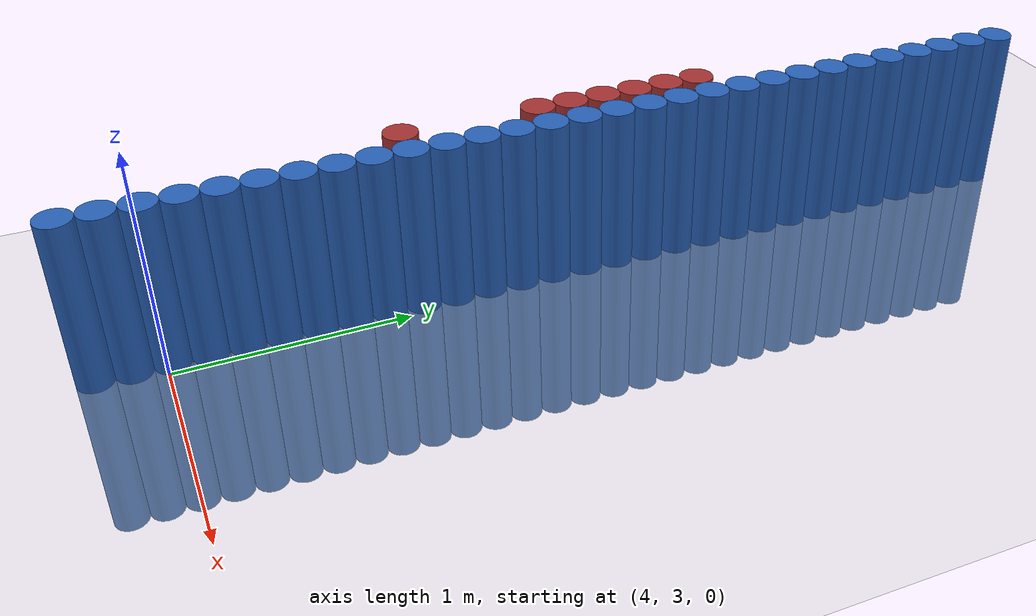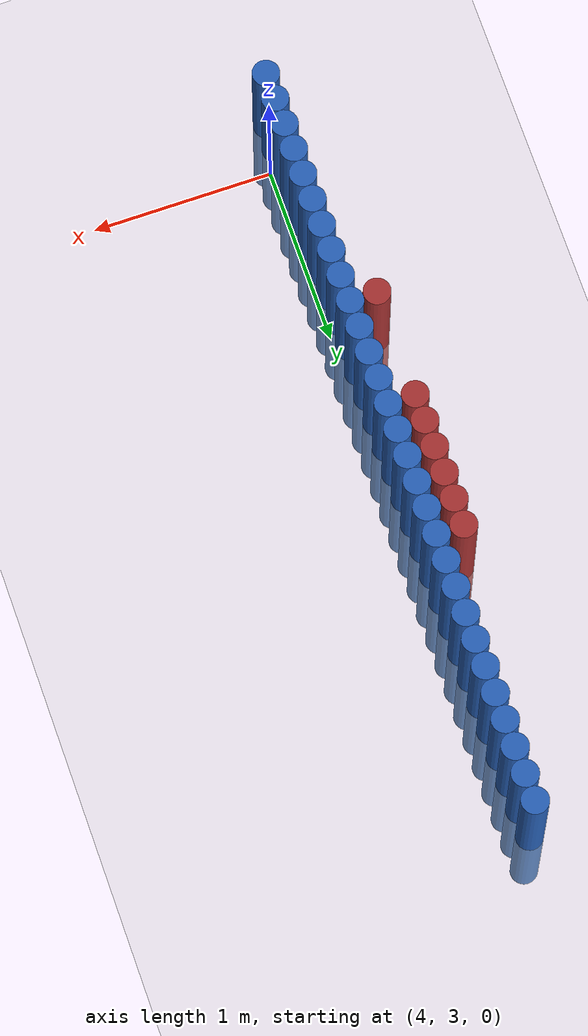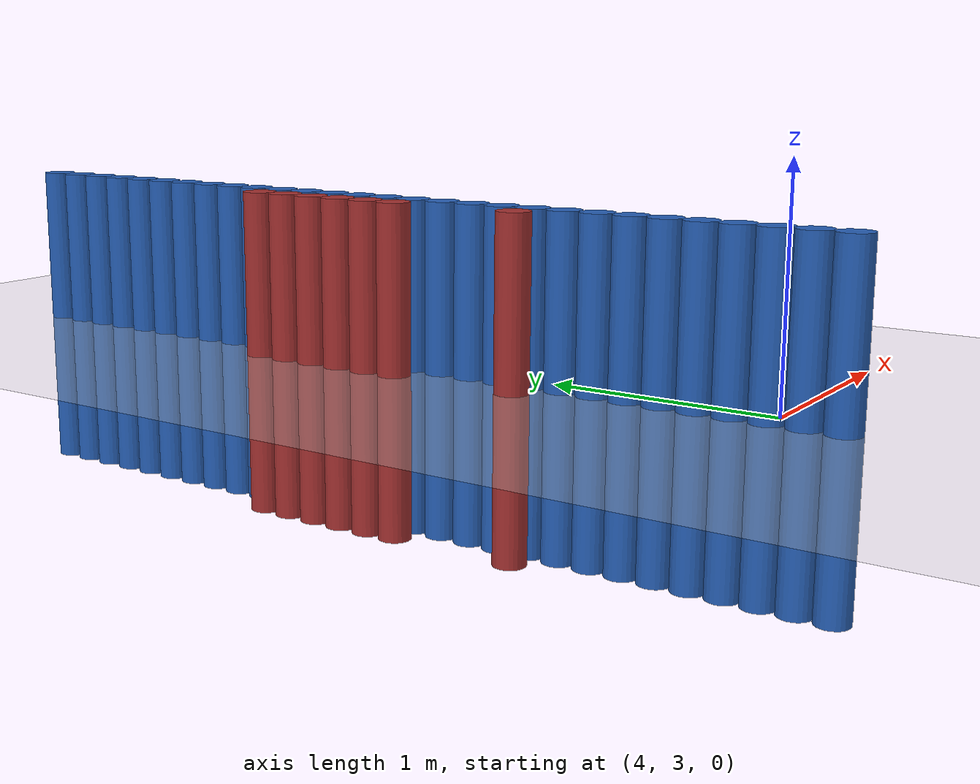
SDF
<sdf version="1.6">
 <world name="default">
  <model name="ground_plane">
   <static>1</static>
   <link name="link">
    <collision name="collision">
     <geometry><plane><normal>0 0 1</normal><size>100 100</size></plane></geometry>
     <surface><friction><ode><mu>100</mu><mu2>50</mu2></ode></friction></surface>
    </collision>
    <visual name="visual">
     <cast_shadows>0</cast_shadows>
     <geometry><plane><normal>0 0 1</normal><size>100 100</size></plane></geometry>
     <material>
      <script><uri>file://media/materials/scripts/gazebo.material</uri><name>Gazebo/Grey</name></script>
     </material>
    </visual>
   </link>
  </model>
  <model name="unit_cylinder_152">
   <static>1</static>
   <pose>3.925000 2.875000 0.000000 0.000000 0.000000 0.000000</pose>
   <link name="link">
    <inertial>
     <mass>1</mass>
     <inertia><ixx>0.145833</ixx><ixy>0</ixy><ixz>0</ixz><iyy>0.145833</iyy><iyz>0</iyz><izz>0.125</izz></inertia>
    </inertial>
    <collision name="collision">
     <geometry><cylinder><radius>0.075000</radius><length>1.5</length></cylinder></geometry>
    </collision>
    <visual name="visual">
     <geometry><cylinder><radius>0.075000</radius><length>1.5</length></cylinder></geometry>
     <material>
      <ambient>0.152000 0.379000 0.720000 1</ambient>
      <diffuse>0.152000 0.379000 0.720000 1</diffuse>
     </material>
     <material>
      <script><name>Gazebo/Grey</name><uri>file://media/materials/scripts/gazebo.material</uri></script>
     </material>
    </visual>
   </link>
  </model>
  <model name="unit_cylinder_154">
   <static>1</static>
   <pose>3.925000 3.025000 0.000000 0.000000 0.000000 0.000000</pose>
   <link name="link">
    <inertial>
     <mass>1</mass>
     <inertia><ixx>0.145833</ixx><ixy>0</ixy><ixz>0</ixz><iyy>0.145833</iyy><iyz>0</iyz><izz>0.125</izz></inertia>
    </inertial>
    <collision name="collision">
     <geometry><cylinder><radius>0.075000</radius><length>1.5</length></cylinder></geometry>
    </collision>
    <visual name="visual">
     <geometry><cylinder><radius>0.075000</radius><length>1.5</length></cylinder></geometry>
     <material>
      <ambient>0.152000 0.379000 0.720000 1</ambient>
      <diffuse>0.152000 0.379000 0.720000 1</diffuse>
     </material>
     <material>
      <script><name>Gazebo/Grey</name><uri>file://media/materials/scripts/gazebo.material</uri></script>
     </material>
    </visual>
   </link>
  </model>
  <model name="unit_cylinder_156">
   <static>1</static>
   <pose>3.925000 3.175000 0.000000 0.000000 0.000000 0.000000</pose>
   <link name="link">
    <inertial>
     <mass>1</mass>
     <inertia><ixx>0.145833</ixx><ixy>0</ixy><ixz>0</ixz><iyy>0.145833</iyy><iyz>0</iyz><izz>0.125</izz></inertia>
    </inertial>
    <collision name="collision">
     <geometry><cylinder><radius>0.075000</radius><length>1.5</length></cylinder></geometry>
    </collision>
    <visual name="visual">
     <geometry><cylinder><radius>0.075000</radius><length>1.5</length></cylinder></geometry>
     <material>
      <ambient>0.152000 0.379000 0.720000 1</ambient>
      <diffuse>0.152000 0.379000 0.720000 1</diffuse>
     </material>
     <material>
      <script><name>Gazebo/Grey</name><uri>file://media/materials/scripts/gazebo.material</uri></script>
     </material>
    </visual>
   </link>
  </model>
  <model name="unit_cylinder_158">
   <static>1</static>
   <pose>3.925000 3.325000 0.000000 0.000000 0.000000 0.000000</pose>
   <link name="link">
    <inertial>
     <mass>1</mass>
     <inertia><ixx>0.145833</ixx><ixy>0</ixy><ixz>0</ixz><iyy>0.145833</iyy><iyz>0</iyz><izz>0.125</izz></inertia>
    </inertial>
    <collision name="collision">
     <geometry><cylinder><radius>0.075000</radius><length>1.5</length></cylinder></geometry>
    </collision>
    <visual name="visual">
     <geometry><cylinder><radius>0.075000</radius><length>1.5</length></cylinder></geometry>
     <material>
      <ambient>0.152000 0.379000 0.720000 1</ambient>
      <diffuse>0.152000 0.379000 0.720000 1</diffuse>
     </material>
     <material>
      <script><name>Gazebo/Grey</name><uri>file://media/materials/scripts/gazebo.material</uri></script>
     </material>
    </visual>
   </link>
  </model>
  <model name="unit_cylinder_160">
   <static>1</static>
   <pose>3.925000 3.475000 0.000000 0.000000 0.000000 0.000000</pose>
   <link name="link">
    <inertial>
     <mass>1</mass>
     <inertia><ixx>0.145833</ixx><ixy>0</ixy><ixz>0</ixz><iyy>0.145833</iyy><iyz>0</iyz><izz>0.125</izz></inertia>
    </inertial>
    <collision name="collision">
     <geometry><cylinder><radius>0.075000</radius><length>1.5</length></cylinder></geometry>
    </collision>
    <visual name="visual">
     <geometry><cylinder><radius>0.075000</radius><length>1.5</length></cylinder></geometry>
     <material>
      <ambient>0.152000 0.379000 0.720000 1</ambient>
      <diffuse>0.152000 0.379000 0.720000 1</diffuse>
     </material>
     <material>
      <script><name>Gazebo/Grey</name><uri>file://media/materials/scripts/gazebo.material</uri></script>
     </material>
    </visual>
   </link>
  </model>
  <model name="unit_cylinder_162">
   <static>1</static>
   <pose>3.925000 3.625000 0.000000 0.000000 0.000000 0.000000</pose>
   <link name="link">
    <inertial>
     <mass>1</mass>
     <inertia><ixx>0.145833</ixx><ixy>0</ixy><ixz>0</ixz><iyy>0.145833</iyy><iyz>0</iyz><izz>0.125</izz></inertia>
    </inertial>
    <collision name="collision">
     <geometry><cylinder><radius>0.075000</radius><length>1.5</length></cylinder></geometry>
    </collision>
    <visual name="visual">
     <geometry><cylinder><radius>0.075000</radius><length>1.5</length></cylinder></geometry>
     <material>
      <ambient>0.152000 0.379000 0.720000 1</ambient>
      <diffuse>0.152000 0.379000 0.720000 1</diffuse>
     </material>
     <material>
      <script><name>Gazebo/Grey</name><uri>file://media/materials/scripts/gazebo.material</uri></script>
     </material>
    </visual>
   </link>
  </model>
  <model name="unit_cylinder_164">
   <static>1</static>
   <pose>3.925000 3.775000 0.000000 0.000000 0.000000 0.000000</pose>
   <link name="link">
    <inertial>
     <mass>1</mass>
     <inertia><ixx>0.145833</ixx><ixy>0</ixy><ixz>0</ixz><iyy>0.145833</iyy><iyz>0</iyz><izz>0.125</izz></inertia>
    </inertial>
    <collision name="collision">
     <geometry><cylinder><radius>0.075000</radius><length>1.5</length></cylinder></geometry>
    </collision>
    <visual name="visual">
     <geometry><cylinder><radius>0.075000</radius><length>1.5</length></cylinder></geometry>
     <material>
      <ambient>0.152000 0.379000 0.720000 1</ambient>
      <diffuse>0.152000 0.379000 0.720000 1</diffuse>
     </material>
     <material>
      <script><name>Gazebo/Grey</name><uri>file://media/materials/scripts/gazebo.material</uri></script>
     </material>
    </visual>
   </link>
  </model>
  <model name="unit_cylinder_166">
   <static>1</static>
   <pose>3.925000 3.925000 0.000000 0.000000 0.000000 0.000000</pose>
   <link name="link">
    <inertial>
     <mass>1</mass>
     <inertia><ixx>0.145833</ixx><ixy>0</ixy><ixz>0</ixz><iyy>0.145833</iyy><iyz>0</iyz><izz>0.125</izz></inertia>
    </inertial>
    <collision name="collision">
     <geometry><cylinder><radius>0.075000</radius><length>1.5</length></cylinder></geometry>
    </collision>
    <visual name="visual">
     <geometry><cylinder><radius>0.075000</radius><length>1.5</length></cylinder></geometry>
     <material>
      <ambient>0.152000 0.379000 0.720000 1</ambient>
      <diffuse>0.152000 0.379000 0.720000 1</diffuse>
     </material>
     <material>
      <script><name>Gazebo/Grey</name><uri>file://media/materials/scripts/gazebo.material</uri></script>
     </material>
    </visual>
   </link>
  </model>
  <model name="unit_cylinder_168">
   <static>1</static>
   <pose>3.925000 4.075000 0.000000 0.000000 0.000000 0.000000</pose>
   <link name="link">
    <inertial>
     <mass>1</mass>
     <inertia><ixx>0.145833</ixx><ixy>0</ixy><ixz>0</ixz><iyy>0.145833</iyy><iyz>0</iyz><izz>0.125</izz></inertia>
    </inertial>
    <collision name="collision">
     <geometry><cylinder><radius>0.075000</radius><length>1.5</length></cylinder></geometry>
    </collision>
    <visual name="visual">
     <geometry><cylinder><radius>0.075000</radius><length>1.5</length></cylinder></geometry>
     <material>
      <ambient>0.152000 0.379000 0.720000 1</ambient>
      <diffuse>0.152000 0.379000 0.720000 1</diffuse>
     </material>
     <material>
      <script><name>Gazebo/Grey</name><uri>file://media/materials/scripts/gazebo.material</uri></script>
     </material>
    </visual>
   </link>
  </model>
  <model name="unit_cylinder_170">
   <static>1</static>
   <pose>3.925000 4.225000 0.000000 0.000000 0.000000 0.000000</pose>
   <link name="link">
    <inertial>
     <mass>1</mass>
     <inertia><ixx>0.145833</ixx><ixy>0</ixy><ixz>0</ixz><iyy>0.145833</iyy><iyz>0</iyz><izz>0.125</izz></inertia>
    </inertial>
    <collision name="collision">
     <geometry><cylinder><radius>0.075000</radius><length>1.5</length></cylinder></geometry>
    </collision>
    <visual name="visual">
     <geometry><cylinder><radius>0.075000</radius><length>1.5</length></cylinder></geometry>
     <material>
      <ambient>0.152000 0.379000 0.720000 1</ambient>
      <diffuse>0.152000 0.379000 0.720000 1</diffuse>
     </material>
     <material>
      <script><name>Gazebo/Grey</name><uri>file://media/materials/scripts/gazebo.material</uri></script>
     </material>
    </visual>
   </link>
  </model>
  <model name="unit_cylinder_172">
   <static>1</static>
   <pose>3.925000 4.375000 0.000000 0.000000 0.000000 0.000000</pose>
   <link name="link">
    <inertial>
     <mass>1</mass>
     <inertia><ixx>0.145833</ixx><ixy>0</ixy><ixz>0</ixz><iyy>0.145833</iyy><iyz>0</iyz><izz>0.125</izz></inertia>
    </inertial>
    <collision name="collision">
     <geometry><cylinder><radius>0.075000</radius><length>1.5</length></cylinder></geometry>
    </collision>
    <visual name="visual">
     <geometry><cylinder><radius>0.075000</radius><length>1.5</length></cylinder></geometry>
     <material>
      <ambient>0.152000 0.379000 0.720000 1</ambient>
      <diffuse>0.152000 0.379000 0.720000 1</diffuse>
     </material>
     <material>
      <script><name>Gazebo/Grey</name><uri>file://media/materials/scripts/gazebo.material</uri></script>
     </material>
    </visual>
   </link>
  </model>
  <model name="unit_cylinder_174">
   <static>1</static>
   <pose>3.925000 4.525000 0.000000 0.000000 0.000000 0.000000</pose>
   <link name="link">
    <inertial>
     <mass>1</mass>
     <inertia><ixx>0.145833</ixx><ixy>0</ixy><ixz>0</ixz><iyy>0.145833</iyy><iyz>0</iyz><izz>0.125</izz></inertia>
    </inertial>
    <collision name="collision">
     <geometry><cylinder><radius>0.075000</radius><length>1.5</length></cylinder></geometry>
    </collision>
    <visual name="visual">
     <geometry><cylinder><radius>0.075000</radius><length>1.5</length></cylinder></geometry>
     <material>
      <ambient>0.152000 0.379000 0.720000 1</ambient>
      <diffuse>0.152000 0.379000 0.720000 1</diffuse>
     </material>
     <material>
      <script><name>Gazebo/Grey</name><uri>file://media/materials/scripts/gazebo.material</uri></script>
     </material>
    </visual>
   </link>
  </model>
  <model name="unit_cylinder_176">
   <static>1</static>
   <pose>3.925000 4.675000 0.000000 0.000000 0.000000 0.000000</pose>
   <link name="link">
    <inertial>
     <mass>1</mass>
     <inertia><ixx>0.145833</ixx><ixy>0</ixy><ixz>0</ixz><iyy>0.145833</iyy><iyz>0</iyz><izz>0.125</izz></inertia>
    </inertial>
    <collision name="collision">
     <geometry><cylinder><radius>0.075000</radius><length>1.5</length></cylinder></geometry>
    </collision>
    <visual name="visual">
     <geometry><cylinder><radius>0.075000</radius><length>1.5</length></cylinder></geometry>
     <material>
      <ambient>0.152000 0.379000 0.720000 1</ambient>
      <diffuse>0.152000 0.379000 0.720000 1</diffuse>
     </material>
     <material>
      <script><name>Gazebo/Grey</name><uri>file://media/materials/scripts/gazebo.material</uri></script>
     </material>
    </visual>
   </link>
  </model>
  <model name="unit_cylinder_178">
   <static>1</static>
   <pose>3.925000 4.825000 0.000000 0.000000 0.000000 0.000000</pose>
   <link name="link">
    <inertial>
     <mass>1</mass>
     <inertia><ixx>0.145833</ixx><ixy>0</ixy><ixz>0</ixz><iyy>0.145833</iyy><iyz>0</iyz><izz>0.125</izz></inertia>
    </inertial>
    <collision name="collision">
     <geometry><cylinder><radius>0.075000</radius><length>1.5</length></cylinder></geometry>
    </collision>
    <visual name="visual">
     <geometry><cylinder><radius>0.075000</radius><length>1.5</length></cylinder></geometry>
     <material>
      <ambient>0.152000 0.379000 0.720000 1</ambient>
      <diffuse>0.152000 0.379000 0.720000 1</diffuse>
     </material>
     <material>
      <script><name>Gazebo/Grey</name><uri>file://media/materials/scripts/gazebo.material</uri></script>
     </material>
    </visual>
   </link>
  </model>
  <model name="unit_cylinder_180">
   <static>1</static>
   <pose>3.925000 4.975000 0.000000 0.000000 0.000000 0.000000</pose>
   <link name="link">
    <inertial>
     <mass>1</mass>
     <inertia><ixx>0.145833</ixx><ixy>0</ixy><ixz>0</ixz><iyy>0.145833</iyy><iyz>0</iyz><izz>0.125</izz></inertia>
    </inertial>
    <collision name="collision">
     <geometry><cylinder><radius>0.075000</radius><length>1.5</length></cylinder></geometry>
    </collision>
    <visual name="visual">
     <geometry><cylinder><radius>0.075000</radius><length>1.5</length></cylinder></geometry>
     <material>
      <ambient>0.152000 0.379000 0.720000 1</ambient>
      <diffuse>0.152000 0.379000 0.720000 1</diffuse>
     </material>
     <material>
      <script><name>Gazebo/Grey</name><uri>file://media/materials/scripts/gazebo.material</uri></script>
     </material>
    </visual>
   </link>
  </model>
  <model name="unit_cylinder_182">
   <static>1</static>
   <pose>3.925000 5.125000 0.000000 0.000000 0.000000 0.000000</pose>
   <link name="link">
    <inertial>
     <mass>1</mass>
     <inertia><ixx>0.145833</ixx><ixy>0</ixy><ixz>0</ixz><iyy>0.145833</iyy><iyz>0</iyz><izz>0.125</izz></inertia>
    </inertial>
    <collision name="collision">
     <geometry><cylinder><radius>0.075000</radius><length>1.5</length></cylinder></geometry>
    </collision>
    <visual name="visual">
     <geometry><cylinder><radius>0.075000</radius><length>1.5</length></cylinder></geometry>
     <material>
      <ambient>0.152000 0.379000 0.720000 1</ambient>
      <diffuse>0.152000 0.379000 0.720000 1</diffuse>
     </material>
     <material>
      <script><name>Gazebo/Grey</name><uri>file://media/materials/scripts/gazebo.material</uri></script>
     </material>
    </visual>
   </link>
  </model>
  <model name="unit_cylinder_184">
   <static>1</static>
   <pose>3.925000 5.275000 0.000000 0.000000 0.000000 0.000000</pose>
   <link name="link">
    <inertial>
     <mass>1</mass>
     <inertia><ixx>0.145833</ixx><ixy>0</ixy><ixz>0</ixz><iyy>0.145833</iyy><iyz>0</iyz><izz>0.125</izz></inertia>
    </inertial>
    <collision name="collision">
     <geometry><cylinder><radius>0.075000</radius><length>1.5</length></cylinder></geometry>
    </collision>
    <visual name="visual">
     <geometry><cylinder><radius>0.075000</radius><length>1.5</length></cylinder></geometry>
     <material>
      <ambient>0.152000 0.379000 0.720000 1</ambient>
      <diffuse>0.152000 0.379000 0.720000 1</diffuse>
     </material>
     <material>
      <script><name>Gazebo/Grey</name><uri>file://media/materials/scripts/gazebo.material</uri></script>
     </material>
    </visual>
   </link>
  </model>
  <model name="unit_cylinder_186">
   <static>1</static>
   <pose>3.925000 5.425000 0.000000 0.000000 0.000000 0.000000</pose>
   <link name="link">
    <inertial>
     <mass>1</mass>
     <inertia><ixx>0.145833</ixx><ixy>0</ixy><ixz>0</ixz><iyy>0.145833</iyy><iyz>0</iyz><izz>0.125</izz></inertia>
    </inertial>
    <collision name="collision">
     <geometry><cylinder><radius>0.075000</radius><length>1.5</length></cylinder></geometry>
    </collision>
    <visual name="visual">
     <geometry><cylinder><radius>0.075000</radius><length>1.5</length></cylinder></geometry>
     <material>
      <ambient>0.152000 0.379000 0.720000 1</ambient>
      <diffuse>0.152000 0.379000 0.720000 1</diffuse>
     </material>
     <material>
      <script><name>Gazebo/Grey</name><uri>file://media/materials/scripts/gazebo.material</uri></script>
     </material>
    </visual>
   </link>
  </model>
  <model name="unit_cylinder_188">
   <static>1</static>
   <pose>3.925000 5.575000 0.000000 0.000000 0.000000 0.000000</pose>
   <link name="link">
    <inertial>
     <mass>1</mass>
     <inertia><ixx>0.145833</ixx><ixy>0</ixy><ixz>0</ixz><iyy>0.145833</iyy><iyz>0</iyz><izz>0.125</izz></inertia>
    </inertial>
    <collision name="collision">
     <geometry><cylinder><radius>0.075000</radius><length>1.5</length></cylinder></geometry>
    </collision>
    <visual name="visual">
     <geometry><cylinder><radius>0.075000</radius><length>1.5</length></cylinder></geometry>
     <material>
      <ambient>0.152000 0.379000 0.720000 1</ambient>
      <diffuse>0.152000 0.379000 0.720000 1</diffuse>
     </material>
     <material>
      <script><name>Gazebo/Grey</name><uri>file://media/materials/scripts/gazebo.material</uri></script>
     </material>
    </visual>
   </link>
  </model>
  <model name="unit_cylinder_190">
   <static>1</static>
   <pose>3.925000 5.725000 0.000000 0.000000 0.000000 0.000000</pose>
   <link name="link">
    <inertial>
     <mass>1</mass>
     <inertia><ixx>0.145833</ixx><ixy>0</ixy><ixz>0</ixz><iyy>0.145833</iyy><iyz>0</iyz><izz>0.125</izz></inertia>
    </inertial>
    <collision name="collision">
     <geometry><cylinder><radius>0.075000</radius><length>1.5</length></cylinder></geometry>
    </collision>
    <visual name="visual">
     <geometry><cylinder><radius>0.075000</radius><length>1.5</length></cylinder></geometry>
     <material>
      <ambient>0.152000 0.379000 0.720000 1</ambient>
      <diffuse>0.152000 0.379000 0.720000 1</diffuse>
     </material>
     <material>
      <script><name>Gazebo/Grey</name><uri>file://media/materials/scripts/gazebo.material</uri></script>
     </material>
    </visual>
   </link>
  </model>
  <model name="unit_cylinder_192">
   <static>1</static>
   <pose>3.925000 5.875000 0.000000 0.000000 0.000000 0.000000</pose>
   <link name="link">
    <inertial>
     <mass>1</mass>
     <inertia><ixx>0.145833</ixx><ixy>0</ixy><ixz>0</ixz><iyy>0.145833</iyy><iyz>0</iyz><izz>0.125</izz></inertia>
    </inertial>
    <collision name="collision">
     <geometry><cylinder><radius>0.075000</radius><length>1.5</length></cylinder></geometry>
    </collision>
    <visual name="visual">
     <geometry><cylinder><radius>0.075000</radius><length>1.5</length></cylinder></geometry>
     <material>
      <ambient>0.152000 0.379000 0.720000 1</ambient>
      <diffuse>0.152000 0.379000 0.720000 1</diffuse>
     </material>
     <material>
      <script><name>Gazebo/Grey</name><uri>file://media/materials/scripts/gazebo.material</uri></script>
     </material>
    </visual>
   </link>
  </model>
  <model name="unit_cylinder_194">
   <static>1</static>
   <pose>3.925000 6.025000 0.000000 0.000000 0.000000 0.000000</pose>
   <link name="link">
    <inertial>
     <mass>1</mass>
     <inertia><ixx>0.145833</ixx><ixy>0</ixy><ixz>0</ixz><iyy>0.145833</iyy><iyz>0</iyz><izz>0.125</izz></inertia>
    </inertial>
    <collision name="collision">
     <geometry><cylinder><radius>0.075000</radius><length>1.5</length></cylinder></geometry>
    </collision>
    <visual name="visual">
     <geometry><cylinder><radius>0.075000</radius><length>1.5</length></cylinder></geometry>
     <material>
      <ambient>0.152000 0.379000 0.720000 1</ambient>
      <diffuse>0.152000 0.379000 0.720000 1</diffuse>
     </material>
     <material>
      <script><name>Gazebo/Grey</name><uri>file://media/materials/scripts/gazebo.material</uri></script>
     </material>
    </visual>
   </link>
  </model>
  <model name="unit_cylinder_196">
   <static>1</static>
   <pose>3.925000 6.175000 0.000000 0.000000 0.000000 0.000000</pose>
   <link name="link">
    <inertial>
     <mass>1</mass>
     <inertia><ixx>0.145833</ixx><ixy>0</ixy><ixz>0</ixz><iyy>0.145833</iyy><iyz>0</iyz><izz>0.125</izz></inertia>
    </inertial>
    <collision name="collision">
     <geometry><cylinder><radius>0.075000</radius><length>1.5</length></cylinder></geometry>
    </collision>
    <visual name="visual">
     <geometry><cylinder><radius>0.075000</radius><length>1.5</length></cylinder></geometry>
     <material>
      <ambient>0.152000 0.379000 0.720000 1</ambient>
      <diffuse>0.152000 0.379000 0.720000 1</diffuse>
     </material>
     <material>
      <script><name>Gazebo/Grey</name><uri>file://media/materials/scripts/gazebo.material</uri></script>
     </material>
    </visual>
   </link>
  </model>
  <model name="unit_cylinder_198">
   <static>1</static>
   <pose>3.925000 6.325000 0.000000 0.000000 0.000000 0.000000</pose>
   <link name="link">
    <inertial>
     <mass>1</mass>
     <inertia><ixx>0.145833</ixx><ixy>0</ixy><ixz>0</ixz><iyy>0.145833</iyy><iyz>0</iyz><izz>0.125</izz></inertia>
    </inertial>
    <collision name="collision">
     <geometry><cylinder><radius>0.075000</radius><length>1.5</length></cylinder></geometry>
    </collision>
    <visual name="visual">
     <geometry><cylinder><radius>0.075000</radius><length>1.5</length></cylinder></geometry>
     <material>
      <ambient>0.152000 0.379000 0.720000 1</ambient>
      <diffuse>0.152000 0.379000 0.720000 1</diffuse>
     </material>
     <material>
      <script><name>Gazebo/Grey</name><uri>file://media/materials/scripts/gazebo.material</uri></script>
     </material>
    </visual>
   </link>
  </model>
  <model name="unit_cylinder_200">
   <static>1</static>
   <pose>3.925000 6.475000 0.000000 0.000000 0.000000 0.000000</pose>
   <link name="link">
    <inertial>
     <mass>1</mass>
     <inertia><ixx>0.145833</ixx><ixy>0</ixy><ixz>0</ixz><iyy>0.145833</iyy><iyz>0</iyz><izz>0.125</izz></inertia>
    </inertial>
    <collision name="collision">
     <geometry><cylinder><radius>0.075000</radius><length>1.5</length></cylinder></geometry>
    </collision>
    <visual name="visual">
     <geometry><cylinder><radius>0.075000</radius><length>1.5</length></cylinder></geometry>
     <material>
      <ambient>0.152000 0.379000 0.720000 1</ambient>
      <diffuse>0.152000 0.379000 0.720000 1</diffuse>
     </material>
     <material>
      <script><name>Gazebo/Grey</name><uri>file://media/materials/scripts/gazebo.material</uri></script>
     </material>
    </visual>
   </link>
  </model>
  <model name="unit_cylinder_202">
   <static>1</static>
   <pose>3.925000 6.625000 0.000000 0.000000 0.000000 0.000000</pose>
   <link name="link">
    <inertial>
     <mass>1</mass>
     <inertia><ixx>0.145833</ixx><ixy>0</ixy><ixz>0</ixz><iyy>0.145833</iyy><iyz>0</iyz><izz>0.125</izz></inertia>
    </inertial>
    <collision name="collision">
     <geometry><cylinder><radius>0.075000</radius><length>1.5</length></cylinder></geometry>
    </collision>
    <visual name="visual">
     <geometry><cylinder><radius>0.075000</radius><length>1.5</length></cylinder></geometry>
     <material>
      <ambient>0.152000 0.379000 0.720000 1</ambient>
      <diffuse>0.152000 0.379000 0.720000 1</diffuse>
     </material>
     <material>
      <script><name>Gazebo/Grey</name><uri>file://media/materials/scripts/gazebo.material</uri></script>
     </material>
    </visual>
   </link>
  </model>
  <model name="unit_cylinder_204">
   <static>1</static>
   <pose>3.925000 6.775000 0.000000 0.000000 0.000000 0.000000</pose>
   <link name="link">
    <inertial>
     <mass>1</mass>
     <inertia><ixx>0.145833</ixx><ixy>0</ixy><ixz>0</ixz><iyy>0.145833</iyy><iyz>0</iyz><izz>0.125</izz></inertia>
    </inertial>
    <collision name="collision">
     <geometry><cylinder><radius>0.075000</radius><length>1.5</length></cylinder></geometry>
    </collision>
    <visual name="visual">
     <geometry><cylinder><radius>0.075000</radius><length>1.5</length></cylinder></geometry>
     <material>
      <ambient>0.152000 0.379000 0.720000 1</ambient>
      <diffuse>0.152000 0.379000 0.720000 1</diffuse>
     </material>
     <material>
      <script><name>Gazebo/Grey</name><uri>file://media/materials/scripts/gazebo.material</uri></script>
     </material>
    </visual>
   </link>
  </model>
  <model name="unit_cylinder_206">
   <static>1</static>
   <pose>3.925000 6.925000 0.000000 0.000000 0.000000 0.000000</pose>
   <link name="link">
    <inertial>
     <mass>1</mass>
     <inertia><ixx>0.145833</ixx><ixy>0</ixy><ixz>0</ixz><iyy>0.145833</iyy><iyz>0</iyz><izz>0.125</izz></inertia>
    </inertial>
    <collision name="collision">
     <geometry><cylinder><radius>0.075000</radius><length>1.5</length></cylinder></geometry>
    </collision>
    <visual name="visual">
     <geometry><cylinder><radius>0.075000</radius><length>1.5</length></cylinder></geometry>
     <material>
      <ambient>0.152000 0.379000 0.720000 1</ambient>
      <diffuse>0.152000 0.379000 0.720000 1</diffuse>
     </material>
     <material>
      <script><name>Gazebo/Grey</name><uri>file://media/materials/scripts/gazebo.material</uri></script>
     </material>
    </visual>
   </link>
  </model>
  <model name="unit_cylinder_483">
   <static>1</static>
   <pose>3.775000 4.075000 0.000000 0.000000 0.000000 0.000000</pose>
   <link name="link">
    <inertial>
     <mass>1</mass>
     <inertia><ixx>0.145833</ixx><ixy>0</ixy><ixz>0</ixz><iyy>0.145833</iyy><iyz>0</iyz><izz>0.125</izz></inertia>
    </inertial>
    <collision name="collision">
     <geometry><cylinder><radius>0.075000</radius><length>1.5</length></cylinder></geometry>
    </collision>
    <visual name="visual">
     <geometry><cylinder><radius>0.075000</radius><length>1.5</length></cylinder></geometry>
     <material>
      <ambient>0.648000 0.192000 0.192000 1</ambient>
      <diffuse>0.648000 0.192000 0.192000 1</diffuse>
     </material>
     <material>
      <script><name>Gazebo/Grey</name><uri>file://media/materials/scripts/gazebo.material</uri></script>
     </material>
    </visual>
   </link>
  </model>
  <model name="unit_cylinder_484">
   <static>1</static>
   <pose>3.775000 4.675000 0.000000 0.000000 0.000000 0.000000</pose>
   <link name="link">
    <inertial>
     <mass>1</mass>
     <inertia><ixx>0.145833</ixx><ixy>0</ixy><ixz>0</ixz><iyy>0.145833</iyy><iyz>0</iyz><izz>0.125</izz></inertia>
    </inertial>
    <collision name="collision">
     <geometry><cylinder><radius>0.075000</radius><length>1.5</length></cylinder></geometry>
    </collision>
    <visual name="visual">
     <geometry><cylinder><radius>0.075000</radius><length>1.5</length></cylinder></geometry>
     <material>
      <ambient>0.648000 0.192000 0.192000 1</ambient>
      <diffuse>0.648000 0.192000 0.192000 1</diffuse>
     </material>
     <material>
      <script><name>Gazebo/Grey</name><uri>file://media/materials/scripts/gazebo.material</uri></script>
     </material>
    </visual>
   </link>
  </model>
  <model name="unit_cylinder_485">
   <static>1</static>
   <pose>3.775000 4.825000 0.000000 0.000000 0.000000 0.000000</pose>
   <link name="link">
    <inertial>
     <mass>1</mass>
     <inertia><ixx>0.145833</ixx><ixy>0</ixy><ixz>0</ixz><iyy>0.145833</iyy><iyz>0</iyz><izz>0.125</izz></inertia>
    </inertial>
    <collision name="collision">
     <geometry><cylinder><radius>0.075000</radius><length>1.5</length></cylinder></geometry>
    </collision>
    <visual name="visual">
     <geometry><cylinder><radius>0.075000</radius><length>1.5</length></cylinder></geometry>
     <material>
      <ambient>0.648000 0.192000 0.192000 1</ambient>
      <diffuse>0.648000 0.192000 0.192000 1</diffuse>
     </material>
     <material>
      <script><name>Gazebo/Grey</name><uri>file://media/materials/scripts/gazebo.material</uri></script>
     </material>
    </visual>
   </link>
  </model>
  <model name="unit_cylinder_486">
   <static>1</static>
   <pose>3.775000 4.975000 0.000000 0.000000 0.000000 0.000000</pose>
   <link name="link">
    <inertial>
     <mass>1</mass>
     <inertia><ixx>0.145833</ixx><ixy>0</ixy><ixz>0</ixz><iyy>0.145833</iyy><iyz>0</iyz><izz>0.125</izz></inertia>
    </inertial>
    <collision name="collision">
     <geometry><cylinder><radius>0.075000</radius><length>1.5</length></cylinder></geometry>
    </collision>
    <visual name="visual">
     <geometry><cylinder><radius>0.075000</radius><length>1.5</length></cylinder></geometry>
     <material>
      <ambient>0.648000 0.192000 0.192000 1</ambient>
      <diffuse>0.648000 0.192000 0.192000 1</diffuse>
     </material>
     <material>
      <script><name>Gazebo/Grey</name><uri>file://media/materials/scripts/gazebo.material</uri></script>
     </material>
    </visual>
   </link>
  </model>
  <model name="unit_cylinder_487">
   <static>1</static>
   <pose>3.775000 5.125000 0.000000 0.000000 0.000000 0.000000</pose>
   <link name="link">
    <inertial>
     <mass>1</mass>
     <inertia><ixx>0.145833</ixx><ixy>0</ixy><ixz>0</ixz><iyy>0.145833</iyy><iyz>0</iyz><izz>0.125</izz></inertia>
    </inertial>
    <collision name="collision">
     <geometry><cylinder><radius>0.075000</radius><length>1.5</length></cylinder></geometry>
    </collision>
    <visual name="visual">
     <geometry><cylinder><radius>0.075000</radius><length>1.5</length></cylinder></geometry>
     <material>
      <ambient>0.648000 0.192000 0.192000 1</ambient>
      <diffuse>0.648000 0.192000 0.192000 1</diffuse>
     </material>
     <material>
      <script><name>Gazebo/Grey</name><uri>file://media/materials/scripts/gazebo.material</uri></script>
     </material>
    </visual>
   </link>
  </model>
  <model name="unit_cylinder_488">
   <static>1</static>
   <pose>3.775000 5.275000 0.000000 0.000000 0.000000 0.000000</pose>
   <link name="link">
    <inertial>
     <mass>1</mass>
     <inertia><ixx>0.145833</ixx><ixy>0</ixy><ixz>0</ixz><iyy>0.145833</iyy><iyz>0</iyz><izz>0.125</izz></inertia>
    </inertial>
    <collision name="collision">
     <geometry><cylinder><radius>0.075000</radius><length>1.5</length></cylinder></geometry>
    </collision>
    <visual name="visual">
     <geometry><cylinder><radius>0.075000</radius><length>1.5</length></cylinder></geometry>
     <material>
      <ambient>0.648000 0.192000 0.192000 1</ambient>
      <diffuse>0.648000 0.192000 0.192000 1</diffuse>
     </material>
     <material>
      <script><name>Gazebo/Grey</name><uri>file://media/materials/scripts/gazebo.material</uri></script>
     </material>
    </visual>
   </link>
  </model>
  <model name="unit_cylinder_489">
   <static>1</static>
   <pose>3.775000 5.425000 0.000000 0.000000 0.000000 0.000000</pose>
   <link name="link">
    <inertial>
     <mass>1</mass>
     <inertia><ixx>0.145833</ixx><ixy>0</ixy><ixz>0</ixz><iyy>0.145833</iyy><iyz>0</iyz><izz>0.125</izz></inertia>
    </inertial>
    <collision name="collision">
     <geometry><cylinder><radius>0.075000</radius><length>1.5</length></cylinder></geometry>
    </collision>
    <visual name="visual">
     <geometry><cylinder><radius>0.075000</radius><length>1.5</length></cylinder></geometry>
     <material>
      <ambient>0.648000 0.192000 0.192000 1</ambient>
      <diffuse>0.648000 0.192000 0.192000 1</diffuse>
     </material>
     <material>
      <script><name>Gazebo/Grey</name><uri>file://media/materials/scripts/gazebo.material</uri></script>
     </material>
    </visual>
   </link>
  </model>
  <model name="unit_cylinder_521">
   <static>1</static>
   <pose>3.925000 2.725000 0.000000 0.000000 0.000000 0.000000</pose>
   <link name="link">
    <inertial>
     <mass>1</mass>
     <inertia><ixx>0.145833</ixx><ixy>0</ixy><ixz>0</ixz><iyy>0.145833</iyy><iyz>0</iyz><izz>0.125</izz></inertia>
    </inertial>
    <collision name="collision">
     <geometry><cylinder><radius>0.075000</radius><length>1.5</length></cylinder></geometry>
    </collision>
    <visual name="visual">
     <geometry><cylinder><radius>0.075000</radius><length>1.5</length></cylinder></geometry>
     <material>
      <ambient>0.152000 0.379000 0.720000 1</ambient>
      <diffuse>0.152000 0.379000 0.720000 1</diffuse>
     </material>
     <material>
      <script><name>Gazebo/Grey</name><uri>file://media/materials/scripts/gazebo.material</uri></script>
     </material>
    </visual>
   </link>
  </model>
  <model name="unit_cylinder_522">
   <static>1</static>
   <pose>3.925000 2.875000 0.000000 0.000000 0.000000 0.000000</pose>
   <link name="link">
    <inertial>
     <mass>1</mass>
     <inertia><ixx>0.145833</ixx><ixy>0</ixy><ixz>0</ixz><iyy>0.145833</iyy><iyz>0</iyz><izz>0.125</izz></inertia>
    </inertial>
    <collision name="collision">
     <geometry><cylinder><radius>0.075000</radius><length>1.5</length></cylinder></geometry>
    </collision>
    <visual name="visual">
     <geometry><cylinder><radius>0.075000</radius><length>1.5</length></cylinder></geometry>
     <material>
      <ambient>0.152000 0.379000 0.720000 1</ambient>
      <diffuse>0.152000 0.379000 0.720000 1</diffuse>
     </material>
     <material>
      <script><name>Gazebo/Grey</name><uri>file://media/materials/scripts/gazebo.material</uri></script>
     </material>
    </visual>
   </link>
  </model>
  <model name="unit_cylinder_523">
   <static>1</static>
   <pose>3.925000 3.025000 0.000000 0.000000 0.000000 0.000000</pose>
   <link name="link">
    <inertial>
     <mass>1</mass>
     <inertia><ixx>0.145833</ixx><ixy>0</ixy><ixz>0</ixz><iyy>0.145833</iyy><iyz>0</iyz><izz>0.125</izz></inertia>
    </inertial>
    <collision name="collision">
     <geometry><cylinder><radius>0.075000</radius><length>1.5</length></cylinder></geometry>
    </collision>
    <visual name="visual">
     <geometry><cylinder><radius>0.075000</radius><length>1.5</length></cylinder></geometry>
     <material>
      <ambient>0.152000 0.379000 0.720000 1</ambient>
      <diffuse>0.152000 0.379000 0.720000 1</diffuse>
     </material>
     <material>
      <script><name>Gazebo/Grey</name><uri>file://media/materials/scripts/gazebo.material</uri></script>
     </material>
    </visual>
   </link>
  </model>
  <model name="unit_cylinder_524">
   <static>1</static>
   <pose>3.925000 3.175000 0.000000 0.000000 0.000000 0.000000</pose>
   <link name="link">
    <inertial>
     <mass>1</mass>
     <inertia><ixx>0.145833</ixx><ixy>0</ixy><ixz>0</ixz><iyy>0.145833</iyy><iyz>0</iyz><izz>0.125</izz></inertia>
    </inertial>
    <collision name="collision">
     <geometry><cylinder><radius>0.075000</radius><length>1.5</length></cylinder></geometry>
    </collision>
    <visual name="visual">
     <geometry><cylinder><radius>0.075000</radius><length>1.5</length></cylinder></geometry>
     <material>
      <ambient>0.152000 0.379000 0.720000 1</ambient>
      <diffuse>0.152000 0.379000 0.720000 1</diffuse>
     </material>
     <material>
      <script><name>Gazebo/Grey</name><uri>file://media/materials/scripts/gazebo.material</uri></script>
     </material>
    </visual>
   </link>
  </model>
  <model name="unit_cylinder_525">
   <static>1</static>
   <pose>3.925000 3.325000 0.000000 0.000000 0.000000 0.000000</pose>
   <link name="link">
    <inertial>
     <mass>1</mass>
     <inertia><ixx>0.145833</ixx><ixy>0</ixy><ixz>0</ixz><iyy>0.145833</iyy><iyz>0</iyz><izz>0.125</izz></inertia>
    </inertial>
    <collision name="collision">
     <geometry><cylinder><radius>0.075000</radius><length>1.5</length></cylinder></geometry>
    </collision>
    <visual name="visual">
     <geometry><cylinder><radius>0.075000</radius><length>1.5</length></cylinder></geometry>
     <material>
      <ambient>0.152000 0.379000 0.720000 1</ambient>
      <diffuse>0.152000 0.379000 0.720000 1</diffuse>
     </material>
     <material>
      <script><name>Gazebo/Grey</name><uri>file://media/materials/scripts/gazebo.material</uri></script>
     </material>
    </visual>
   </link>
  </model>
  <model name="unit_cylinder_526">
   <static>1</static>
   <pose>3.925000 3.475000 0.000000 0.000000 0.000000 0.000000</pose>
   <link name="link">
    <inertial>
     <mass>1</mass>
     <inertia><ixx>0.145833</ixx><ixy>0</ixy><ixz>0</ixz><iyy>0.145833</iyy><iyz>0</iyz><izz>0.125</izz></inertia>
    </inertial>
    <collision name="collision">
     <geometry><cylinder><radius>0.075000</radius><length>1.5</length></cylinder></geometry>
    </collision>
    <visual name="visual">
     <geometry><cylinder><radius>0.075000</radius><length>1.5</length></cylinder></geometry>
     <material>
      <ambient>0.152000 0.379000 0.720000 1</ambient>
      <diffuse>0.152000 0.379000 0.720000 1</diffuse>
     </material>
     <material>
      <script><name>Gazebo/Grey</name><uri>file://media/materials/scripts/gazebo.material</uri></script>
     </material>
    </visual>
   </link>
  </model>
  <model name="unit_cylinder_527">
   <static>1</static>
   <pose>3.925000 3.625000 0.000000 0.000000 0.000000 0.000000</pose>
   <link name="link">
    <inertial>
     <mass>1</mass>
     <inertia><ixx>0.145833</ixx><ixy>0</ixy><ixz>0</ixz><iyy>0.145833</iyy><iyz>0</iyz><izz>0.125</izz></inertia>
    </inertial>
    <collision name="collision">
     <geometry><cylinder><radius>0.075000</radius><length>1.5</length></cylinder></geometry>
    </collision>
    <visual name="visual">
     <geometry><cylinder><radius>0.075000</radius><length>1.5</length></cylinder></geometry>
     <material>
      <ambient>0.152000 0.379000 0.720000 1</ambient>
      <diffuse>0.152000 0.379000 0.720000 1</diffuse>
     </material>
     <material>
      <script><name>Gazebo/Grey</name><uri>file://media/materials/scripts/gazebo.material</uri></script>
     </material>
    </visual>
   </link>
  </model>
  <model name="unit_cylinder_528">
   <static>1</static>
   <pose>3.925000 3.775000 0.000000 0.000000 0.000000 0.000000</pose>
   <link name="link">
    <inertial>
     <mass>1</mass>
     <inertia><ixx>0.145833</ixx><ixy>0</ixy><ixz>0</ixz><iyy>0.145833</iyy><iyz>0</iyz><izz>0.125</izz></inertia>
    </inertial>
    <collision name="collision">
     <geometry><cylinder><radius>0.075000</radius><length>1.5</length></cylinder></geometry>
    </collision>
    <visual name="visual">
     <geometry><cylinder><radius>0.075000</radius><length>1.5</length></cylinder></geometry>
     <material>
      <ambient>0.152000 0.379000 0.720000 1</ambient>
      <diffuse>0.152000 0.379000 0.720000 1</diffuse>
     </material>
     <material>
      <script><name>Gazebo/Grey</name><uri>file://media/materials/scripts/gazebo.material</uri></script>
     </material>
    </visual>
   </link>
  </model>
  <model name="unit_cylinder_529">
   <static>1</static>
   <pose>3.925000 3.925000 0.000000 0.000000 0.000000 0.000000</pose>
   <link name="link">
    <inertial>
     <mass>1</mass>
     <inertia><ixx>0.145833</ixx><ixy>0</ixy><ixz>0</ixz><iyy>0.145833</iyy><iyz>0</iyz><izz>0.125</izz></inertia>
    </inertial>
    <collision name="collision">
     <geometry><cylinder><radius>0.075000</radius><length>1.5</length></cylinder></geometry>
    </collision>
    <visual name="visual">
     <geometry><cylinder><radius>0.075000</radius><length>1.5</length></cylinder></geometry>
     <material>
      <ambient>0.152000 0.379000 0.720000 1</ambient>
      <diffuse>0.152000 0.379000 0.720000 1</diffuse>
     </material>
     <material>
      <script><name>Gazebo/Grey</name><uri>file://media/materials/scripts/gazebo.material</uri></script>
     </material>
    </visual>
   </link>
  </model>
  <model name="unit_cylinder_530">
   <static>1</static>
   <pose>3.925000 4.075000 0.000000 0.000000 0.000000 0.000000</pose>
   <link name="link">
    <inertial>
     <mass>1</mass>
     <inertia><ixx>0.145833</ixx><ixy>0</ixy><ixz>0</ixz><iyy>0.145833</iyy><iyz>0</iyz><izz>0.125</izz></inertia>
    </inertial>
    <collision name="collision">
     <geometry><cylinder><radius>0.075000</radius><length>1.5</length></cylinder></geometry>
    </collision>
    <visual name="visual">
     <geometry><cylinder><radius>0.075000</radius><length>1.5</length></cylinder></geometry>
     <material>
      <ambient>0.152000 0.379000 0.720000 1</ambient>
      <diffuse>0.152000 0.379000 0.720000 1</diffuse>
     </material>
     <material>
      <script><name>Gazebo/Grey</name><uri>file://media/materials/scripts/gazebo.material</uri></script>
     </material>
    </visual>
   </link>
  </model>
  <model name="unit_cylinder_531">
   <static>1</static>
   <pose>3.925000 4.225000 0.000000 0.000000 0.000000 0.000000</pose>
   <link name="link">
    <inertial>
     <mass>1</mass>
     <inertia><ixx>0.145833</ixx><ixy>0</ixy><ixz>0</ixz><iyy>0.145833</iyy><iyz>0</iyz><izz>0.125</izz></inertia>
    </inertial>
    <collision name="collision">
     <geometry><cylinder><radius>0.075000</radius><length>1.5</length></cylinder></geometry>
    </collision>
    <visual name="visual">
     <geometry><cylinder><radius>0.075000</radius><length>1.5</length></cylinder></geometry>
     <material>
      <ambient>0.152000 0.379000 0.720000 1</ambient>
      <diffuse>0.152000 0.379000 0.720000 1</diffuse>
     </material>
     <material>
      <script><name>Gazebo/Grey</name><uri>file://media/materials/scripts/gazebo.material</uri></script>
     </material>
    </visual>
   </link>
  </model>
  <model name="unit_cylinder_532">
   <static>1</static>
   <pose>3.925000 4.375000 0.000000 0.000000 0.000000 0.000000</pose>
   <link name="link">
    <inertial>
     <mass>1</mass>
     <inertia><ixx>0.145833</ixx><ixy>0</ixy><ixz>0</ixz><iyy>0.145833</iyy><iyz>0</iyz><izz>0.125</izz></inertia>
    </inertial>
    <collision name="collision">
     <geometry><cylinder><radius>0.075000</radius><length>1.5</length></cylinder></geometry>
    </collision>
    <visual name="visual">
     <geometry><cylinder><radius>0.075000</radius><length>1.5</length></cylinder></geometry>
     <material>
      <ambient>0.152000 0.379000 0.720000 1</ambient>
      <diffuse>0.152000 0.379000 0.720000 1</diffuse>
     </material>
     <material>
      <script><name>Gazebo/Grey</name><uri>file://media/materials/scripts/gazebo.material</uri></script>
     </material>
    </visual>
   </link>
  </model>
  <model name="unit_cylinder_533">
   <static>1</static>
   <pose>3.925000 4.525000 0.000000 0.000000 0.000000 0.000000</pose>
   <link name="link">
    <inertial>
     <mass>1</mass>
     <inertia><ixx>0.145833</ixx><ixy>0</ixy><ixz>0</ixz><iyy>0.145833</iyy><iyz>0</iyz><izz>0.125</izz></inertia>
    </inertial>
    <collision name="collision">
     <geometry><cylinder><radius>0.075000</radius><length>1.5</length></cylinder></geometry>
    </collision>
    <visual name="visual">
     <geometry><cylinder><radius>0.075000</radius><length>1.5</length></cylinder></geometry>
     <material>
      <ambient>0.152000 0.379000 0.720000 1</ambient>
      <diffuse>0.152000 0.379000 0.720000 1</diffuse>
     </material>
     <material>
      <script><name>Gazebo/Grey</name><uri>file://media/materials/scripts/gazebo.material</uri></script>
     </material>
    </visual>
   </link>
  </model>
  <model name="unit_cylinder_534">
   <static>1</static>
   <pose>3.925000 4.675000 0.000000 0.000000 0.000000 0.000000</pose>
   <link name="link">
    <inertial>
     <mass>1</mass>
     <inertia><ixx>0.145833</ixx><ixy>0</ixy><ixz>0</ixz><iyy>0.145833</iyy><iyz>0</iyz><izz>0.125</izz></inertia>
    </inertial>
    <collision name="collision">
     <geometry><cylinder><radius>0.075000</radius><length>1.5</length></cylinder></geometry>
    </collision>
    <visual name="visual">
     <geometry><cylinder><radius>0.075000</radius><length>1.5</length></cylinder></geometry>
     <material>
      <ambient>0.152000 0.379000 0.720000 1</ambient>
      <diffuse>0.152000 0.379000 0.720000 1</diffuse>
     </material>
     <material>
      <script><name>Gazebo/Grey</name><uri>file://media/materials/scripts/gazebo.material</uri></script>
     </material>
    </visual>
   </link>
  </model>
  <model name="unit_cylinder_535">
   <static>1</static>
   <pose>3.925000 4.825000 0.000000 0.000000 0.000000 0.000000</pose>
   <link name="link">
    <inertial>
     <mass>1</mass>
     <inertia><ixx>0.145833</ixx><ixy>0</ixy><ixz>0</ixz><iyy>0.145833</iyy><iyz>0</iyz><izz>0.125</izz></inertia>
    </inertial>
    <collision name="collision">
     <geometry><cylinder><radius>0.075000</radius><length>1.5</length></cylinder></geometry>
    </collision>
    <visual name="visual">
     <geometry><cylinder><radius>0.075000</radius><length>1.5</length></cylinder></geometry>
     <material>
      <ambient>0.152000 0.379000 0.720000 1</ambient>
      <diffuse>0.152000 0.379000 0.720000 1</diffuse>
     </material>
     <material>
      <script><name>Gazebo/Grey</name><uri>file://media/materials/scripts/gazebo.material</uri></script>
     </material>
    </visual>
   </link>
  </model>
  <model name="unit_cylinder_536">
   <static>1</static>
   <pose>3.925000 4.975000 0.000000 0.000000 0.000000 0.000000</pose>
   <link name="link">
    <inertial>
     <mass>1</mass>
     <inertia><ixx>0.145833</ixx><ixy>0</ixy><ixz>0</ixz><iyy>0.145833</iyy><iyz>0</iyz><izz>0.125</izz></inertia>
    </inertial>
    <collision name="collision">
     <geometry><cylinder><radius>0.075000</radius><length>1.5</length></cylinder></geometry>
    </collision>
    <visual name="visual">
     <geometry><cylinder><radius>0.075000</radius><length>1.5</length></cylinder></geometry>
     <material>
      <ambient>0.152000 0.379000 0.720000 1</ambient>
      <diffuse>0.152000 0.379000 0.720000 1</diffuse>
     </material>
     <material>
      <script><name>Gazebo/Grey</name><uri>file://media/materials/scripts/gazebo.material</uri></script>
     </material>
    </visual>
   </link>
  </model>
  <model name="unit_cylinder_537">
   <static>1</static>
   <pose>3.925000 5.125000 0.000000 0.000000 0.000000 0.000000</pose>
   <link name="link">
    <inertial>
     <mass>1</mass>
     <inertia><ixx>0.145833</ixx><ixy>0</ixy><ixz>0</ixz><iyy>0.145833</iyy><iyz>0</iyz><izz>0.125</izz></inertia>
    </inertial>
    <collision name="collision">
     <geometry><cylinder><radius>0.075000</radius><length>1.5</length></cylinder></geometry>
    </collision>
    <visual name="visual">
     <geometry><cylinder><radius>0.075000</radius><length>1.5</length></cylinder></geometry>
     <material>
      <ambient>0.152000 0.379000 0.720000 1</ambient>
      <diffuse>0.152000 0.379000 0.720000 1</diffuse>
     </material>
     <material>
      <script><name>Gazebo/Grey</name><uri>file://media/materials/scripts/gazebo.material</uri></script>
     </material>
    </visual>
   </link>
  </model>
  <model name="unit_cylinder_538">
   <static>1</static>
   <pose>3.925000 5.275000 0.000000 0.000000 0.000000 0.000000</pose>
   <link name="link">
    <inertial>
     <mass>1</mass>
     <inertia><ixx>0.145833</ixx><ixy>0</ixy><ixz>0</ixz><iyy>0.145833</iyy><iyz>0</iyz><izz>0.125</izz></inertia>
    </inertial>
    <collision name="collision">
     <geometry><cylinder><radius>0.075000</radius><length>1.5</length></cylinder></geometry>
    </collision>
    <visual name="visual">
     <geometry><cylinder><radius>0.075000</radius><length>1.5</length></cylinder></geometry>
     <material>
      <ambient>0.152000 0.379000 0.720000 1</ambient>
      <diffuse>0.152000 0.379000 0.720000 1</diffuse>
     </material>
     <material>
      <script><name>Gazebo/Grey</name><uri>file://media/materials/scripts/gazebo.material</uri></script>
     </material>
    </visual>
   </link>
  </model>
  <model name="unit_cylinder_539">
   <static>1</static>
   <pose>3.925000 5.425000 0.000000 0.000000 0.000000 0.000000</pose>
   <link name="link">
    <inertial>
     <mass>1</mass>
     <inertia><ixx>0.145833</ixx><ixy>0</ixy><ixz>0</ixz><iyy>0.145833</iyy><iyz>0</iyz><izz>0.125</izz></inertia>
    </inertial>
    <collision name="collision">
     <geometry><cylinder><radius>0.075000</radius><length>1.5</length></cylinder></geometry>
    </collision>
    <visual name="visual">
     <geometry><cylinder><radius>0.075000</radius><length>1.5</length></cylinder></geometry>
     <material>
      <ambient>0.152000 0.379000 0.720000 1</ambient>
      <diffuse>0.152000 0.379000 0.720000 1</diffuse>
     </material>
     <material>
      <script><name>Gazebo/Grey</name><uri>file://media/materials/scripts/gazebo.material</uri></script>
     </material>
    </visual>
   </link>
  </model>
 </world>
</sdf>
